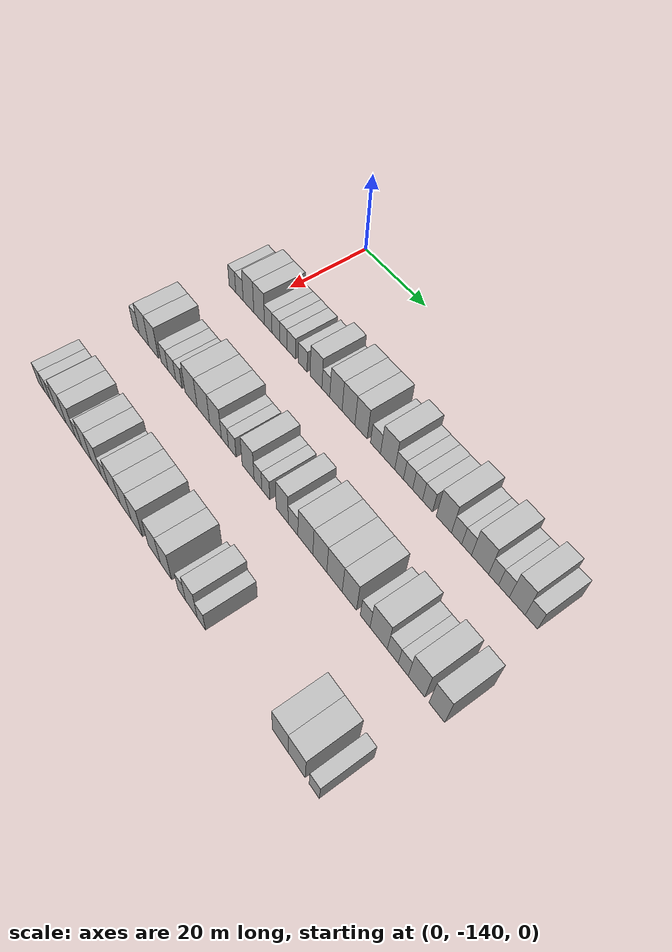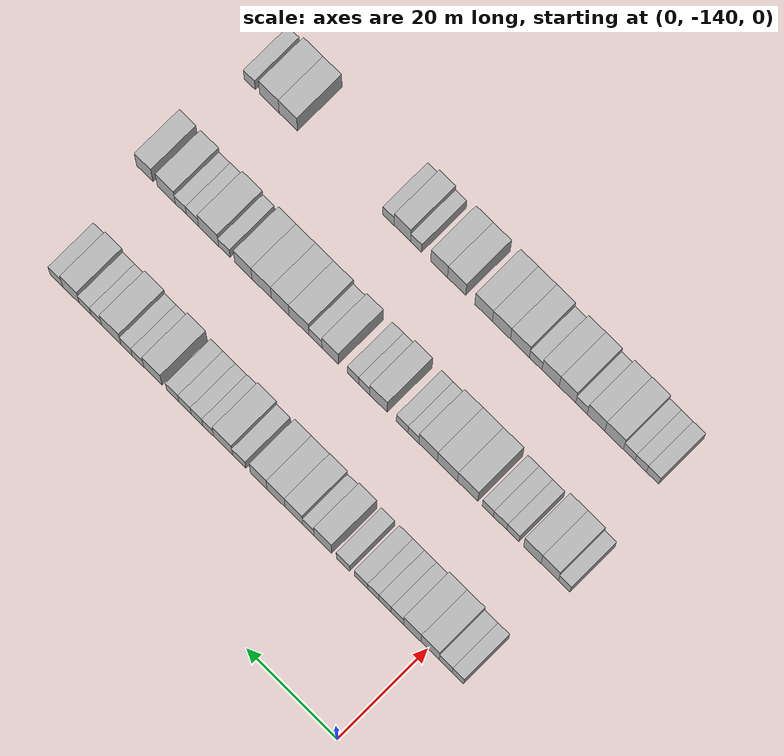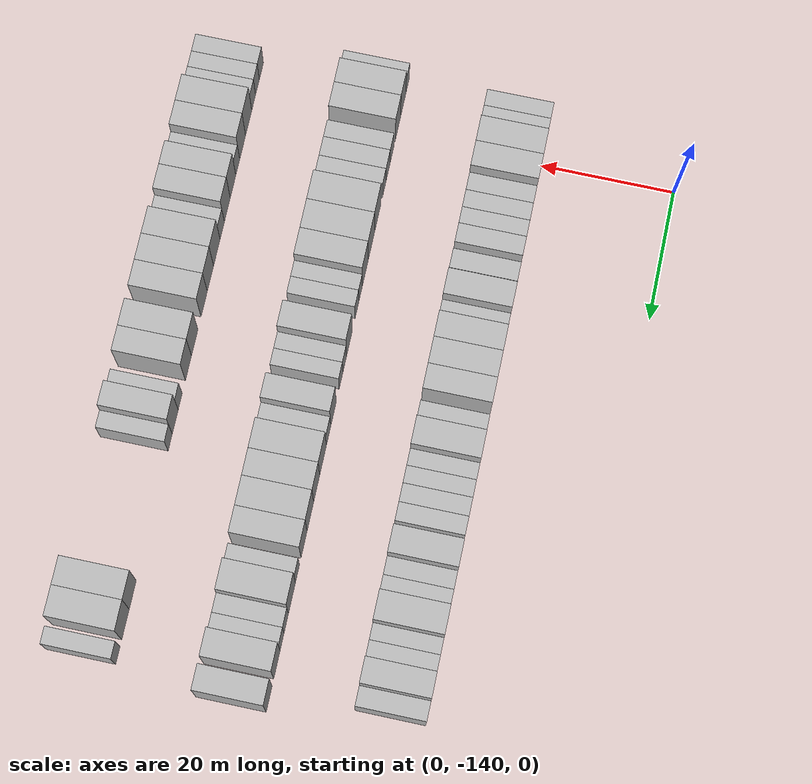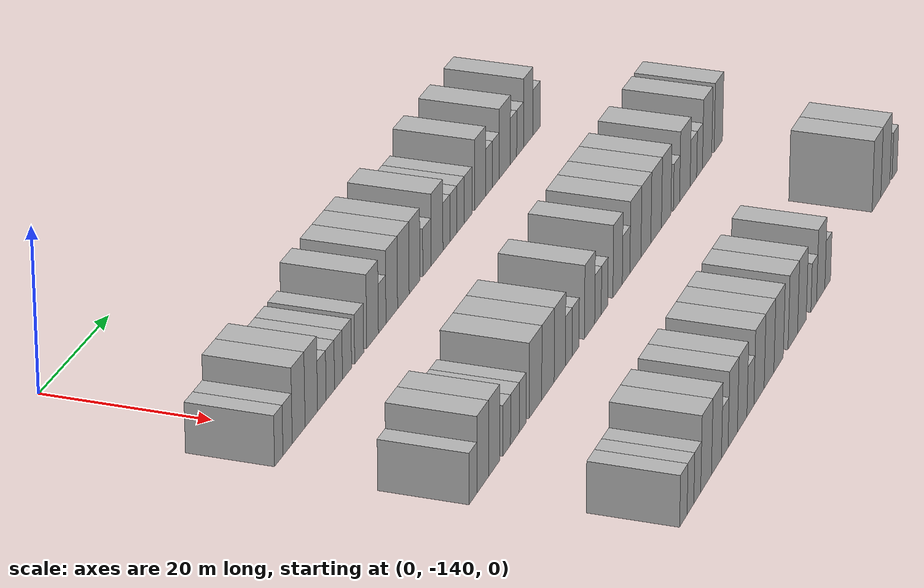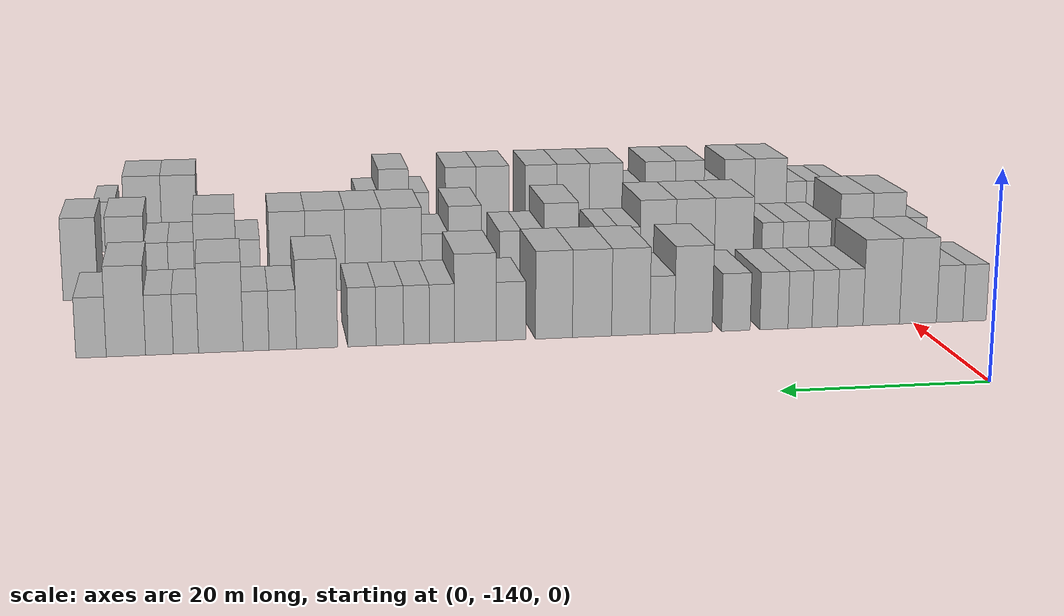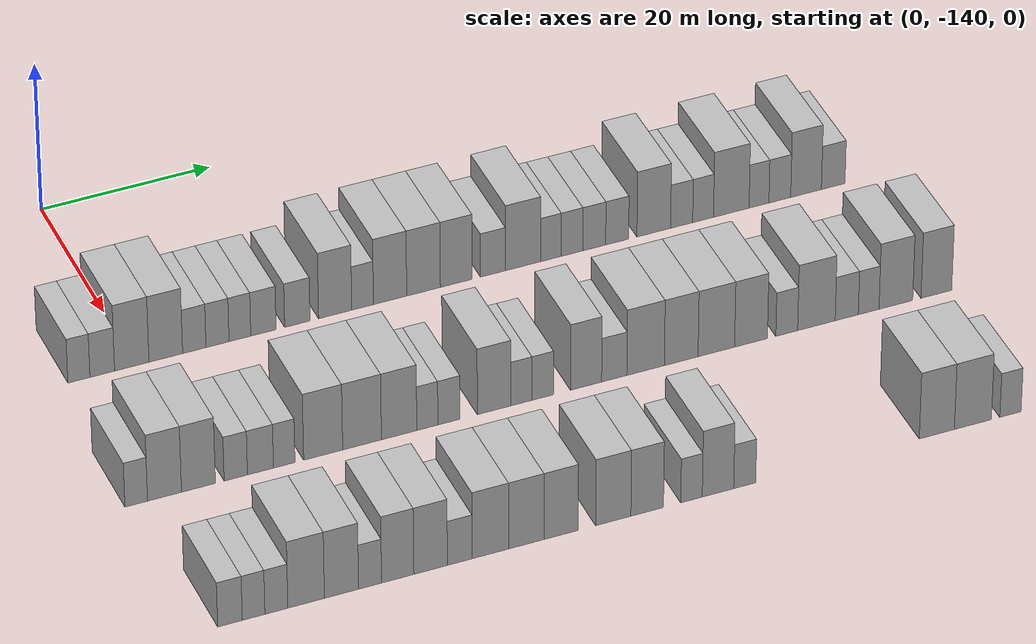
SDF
<sdf version="1.6">
 <world name="default">
  <model name="building_24">
   <static>1</static>
   <pose>25.0000 -146.5695 0 0.000000 0.000000 0.000000</pose>
   <link name="link">
    <pose>0 0 3.00 0 0 0</pose>
    <collision name="collision"><geometry><box><size>10.0000 2.5416 6.0000</size></box></geometry></collision>
    <visual name="visual">
     <cast_shadows>0</cast_shadows>
     <geometry><box><size>10.0000 2.5416 6.0000</size></box></geometry>
     <material>
      <script>
       <uri>model://HANNAS_wall/materials/scripts</uri>
       <uri>model://HANNAS_wall/materials/textures</uri>
       <name>vrc/HANNAS_wall</name>
      </script>
     </material>
    </visual>
   </link>
  </model>
  <model name="building_25">
   <static>1</static>
   <pose>25.0000 -143.8819 0 0.000000 0.000000 0.000000</pose>
   <link name="link">
    <pose>0 0 3.00 0 0 0</pose>
    <collision name="collision"><geometry><box><size>10.0000 2.8336 6.0000</size></box></geometry></collision>
    <visual name="visual">
     <cast_shadows>0</cast_shadows>
     <geometry><box><size>10.0000 2.8336 6.0000</size></box></geometry>
     <material>
      <script>
       <uri>model://HANNAS_wall/materials/scripts</uri>
       <uri>model://HANNAS_wall/materials/textures</uri>
       <name>vrc/HANNAS_wall</name>
      </script>
     </material>
    </visual>
   </link>
  </model>
  <model name="building_26">
   <static>1</static>
   <pose>25.0000 -140.4807 0 0.000000 0.000000 0.000000</pose>
   <link name="link">
    <pose>0 0 4.50 0 0 0</pose>
    <collision name="collision"><geometry><box><size>10.0000 3.9688 9.0000</size></box></geometry></collision>
    <visual name="visual">
     <cast_shadows>0</cast_shadows>
     <geometry><box><size>10.0000 3.9688 9.0000</size></box></geometry>
     <material>
      <script>
       <uri>model://HANNAS_wall/materials/scripts</uri>
       <uri>model://HANNAS_wall/materials/textures</uri>
       <name>vrc/HANNAS_wall</name>
      </script>
     </material>
    </visual>
   </link>
  </model>
  <model name="building_27">
   <static>1</static>
   <pose>25.0000 -136.5511 0 0.000000 0.000000 0.000000</pose>
   <link name="link">
    <pose>0 0 4.50 0 0 0</pose>
    <collision name="collision"><geometry><box><size>10.0000 3.8904 9.0000</size></box></geometry></collision>
    <visual name="visual">
     <cast_shadows>0</cast_shadows>
     <geometry><box><size>10.0000 3.8904 9.0000</size></box></geometry>
     <material>
      <script>
       <uri>model://HANNAS_wall/materials/scripts</uri>
       <uri>model://HANNAS_wall/materials/textures</uri>
       <name>vrc/HANNAS_wall</name>
      </script>
     </material>
    </visual>
   </link>
  </model>
  <model name="building_28">
   <static>1</static>
   <pose>25.0000 -133.2498 0 0.000000 0.000000 0.000000</pose>
   <link name="link">
    <pose>0 0 3.00 0 0 0</pose>
    <collision name="collision"><geometry><box><size>10.0000 2.7122 6.0000</size></box></geometry></collision>
    <visual name="visual">
     <cast_shadows>0</cast_shadows>
     <geometry><box><size>10.0000 2.7122 6.0000</size></box></geometry>
     <material>
      <script>
       <uri>model://HANNAS_wall/materials/scripts</uri>
       <uri>model://HANNAS_wall/materials/textures</uri>
       <name>vrc/HANNAS_wall</name>
      </script>
     </material>
    </visual>
   </link>
  </model>
  <model name="building_29">
   <static>1</static>
   <pose>25.0000 -130.5531 0 0.000000 0.000000 0.000000</pose>
   <link name="link">
    <pose>0 0 3.00 0 0 0</pose>
    <collision name="collision"><geometry><box><size>10.0000 2.6812 6.0000</size></box></geometry></collision>
    <visual name="visual">
     <cast_shadows>0</cast_shadows>
     <geometry><box><size>10.0000 2.6812 6.0000</size></box></geometry>
     <material>
      <script>
       <uri>model://HANNAS_wall/materials/scripts</uri>
       <uri>model://HANNAS_wall/materials/textures</uri>
       <name>vrc/HANNAS_wall</name>
      </script>
     </material>
    </visual>
   </link>
  </model>
  <model name="building_30">
   <static>1</static>
   <pose>25.0000 -127.9489 0 0.000000 0.000000 0.000000</pose>
   <link name="link">
    <pose>0 0 3.00 0 0 0</pose>
    <collision name="collision"><geometry><box><size>10.0000 2.5270 6.0000</size></box></geometry></collision>
    <visual name="visual">
     <cast_shadows>0</cast_shadows>
     <geometry><box><size>10.0000 2.5270 6.0000</size></box></geometry>
     <material>
      <script>
       <uri>model://HANNAS_wall/materials/scripts</uri>
       <uri>model://HANNAS_wall/materials/textures</uri>
       <name>vrc/HANNAS_wall</name>
      </script>
     </material>
    </visual>
   </link>
  </model>
  <model name="building_31">
   <static>1</static>
   <pose>25.0000 -125.2089 0 0.000000 0.000000 0.000000</pose>
   <link name="link">
    <pose>0 0 3.00 0 0 0</pose>
    <collision name="collision"><geometry><box><size>10.0000 2.9530 6.0000</size></box></geometry></collision>
    <visual name="visual">
     <cast_shadows>0</cast_shadows>
     <geometry><box><size>10.0000 2.9530 6.0000</size></box></geometry>
     <material>
      <script>
       <uri>model://HANNAS_wall/materials/scripts</uri>
       <uri>model://HANNAS_wall/materials/textures</uri>
       <name>vrc/HANNAS_wall</name>
      </script>
     </material>
    </visual>
   </link>
  </model>
  <model name="building_32">
   <static>1</static>
   <pose>25.0000 -121.2491 0 0.000000 0.000000 0.000000</pose>
   <link name="link">
    <pose>0 0 3.00 0 0 0</pose>
    <collision name="collision"><geometry><box><size>10.0000 2.9667 6.0000</size></box></geometry></collision>
    <visual name="visual">
     <cast_shadows>0</cast_shadows>
     <geometry><box><size>10.0000 2.9667 6.0000</size></box></geometry>
     <material>
      <script>
       <uri>model://HANNAS_wall/materials/scripts</uri>
       <uri>model://HANNAS_wall/materials/textures</uri>
       <name>vrc/HANNAS_wall</name>
      </script>
     </material>
    </visual>
   </link>
  </model>
  <model name="building_33">
   <static>1</static>
   <pose>25.0000 -116.8174 0 0.000000 0.000000 0.000000</pose>
   <link name="link">
    <pose>0 0 4.50 0 0 0</pose>
    <collision name="collision"><geometry><box><size>10.0000 3.8967 9.0000</size></box></geometry></collision>
    <visual name="visual">
     <cast_shadows>0</cast_shadows>
     <geometry><box><size>10.0000 3.8967 9.0000</size></box></geometry>
     <material>
      <script>
       <uri>model://HANNAS_wall/materials/scripts</uri>
       <uri>model://HANNAS_wall/materials/textures</uri>
       <name>vrc/HANNAS_wall</name>
      </script>
     </material>
    </visual>
   </link>
  </model>
  <model name="building_34">
   <static>1</static>
   <pose>25.0000 -113.5964 0 0.000000 0.000000 0.000000</pose>
   <link name="link">
    <pose>0 0 3.00 0 0 0</pose>
    <collision name="collision"><geometry><box><size>10.0000 2.5452 6.0000</size></box></geometry></collision>
    <visual name="visual">
     <cast_shadows>0</cast_shadows>
     <geometry><box><size>10.0000 2.5452 6.0000</size></box></geometry>
     <material>
      <script>
       <uri>model://HANNAS_wall/materials/scripts</uri>
       <uri>model://HANNAS_wall/materials/textures</uri>
       <name>vrc/HANNAS_wall</name>
      </script>
     </material>
    </visual>
   </link>
  </model>
  <model name="building_35">
   <static>1</static>
   <pose>25.0000 -110.3677 0 0.000000 0.000000 0.000000</pose>
   <link name="link">
    <pose>0 0 4.50 0 0 0</pose>
    <collision name="collision"><geometry><box><size>10.0000 3.9122 9.0000</size></box></geometry></collision>
    <visual name="visual">
     <cast_shadows>0</cast_shadows>
     <geometry><box><size>10.0000 3.9122 9.0000</size></box></geometry>
     <material>
      <script>
       <uri>model://HANNAS_wall/materials/scripts</uri>
       <uri>model://HANNAS_wall/materials/textures</uri>
       <name>vrc/HANNAS_wall</name>
      </script>
     </material>
    </visual>
   </link>
  </model>
  <model name="building_36">
   <static>1</static>
   <pose>25.0000 -106.4191 0 0.000000 0.000000 0.000000</pose>
   <link name="link">
    <pose>0 0 4.50 0 0 0</pose>
    <collision name="collision"><geometry><box><size>10.0000 3.9849 9.0000</size></box></geometry></collision>
    <visual name="visual">
     <cast_shadows>0</cast_shadows>
     <geometry><box><size>10.0000 3.9849 9.0000</size></box></geometry>
     <material>
      <script>
       <uri>model://HANNAS_wall/materials/scripts</uri>
       <uri>model://HANNAS_wall/materials/textures</uri>
       <name>vrc/HANNAS_wall</name>
      </script>
     </material>
    </visual>
   </link>
  </model>
  <model name="building_37">
   <static>1</static>
   <pose>25.0000 -102.5497 0 0.000000 0.000000 0.000000</pose>
   <link name="link">
    <pose>0 0 4.50 0 0 0</pose>
    <collision name="collision"><geometry><box><size>10.0000 3.7540 9.0000</size></box></geometry></collision>
    <visual name="visual">
     <cast_shadows>0</cast_shadows>
     <geometry><box><size>10.0000 3.7540 9.0000</size></box></geometry>
     <material>
      <script>
       <uri>model://HANNAS_wall/materials/scripts</uri>
       <uri>model://HANNAS_wall/materials/textures</uri>
       <name>vrc/HANNAS_wall</name>
      </script>
     </material>
    </visual>
   </link>
  </model>
  <model name="building_38">
   <static>1</static>
   <pose>25.0000 -98.1888 0 0.000000 0.000000 0.000000</pose>
   <link name="link">
    <pose>0 0 3.00 0 0 0</pose>
    <collision name="collision"><geometry><box><size>10.0000 2.9676 6.0000</size></box></geometry></collision>
    <visual name="visual">
     <cast_shadows>0</cast_shadows>
     <geometry><box><size>10.0000 2.9676 6.0000</size></box></geometry>
     <material>
      <script>
       <uri>model://HANNAS_wall/materials/scripts</uri>
       <uri>model://HANNAS_wall/materials/textures</uri>
       <name>vrc/HANNAS_wall</name>
      </script>
     </material>
    </visual>
   </link>
  </model>
  <model name="building_39">
   <static>1</static>
   <pose>25.0000 -94.6192 0 0.000000 0.000000 0.000000</pose>
   <link name="link">
    <pose>0 0 4.50 0 0 0</pose>
    <collision name="collision"><geometry><box><size>10.0000 4.1716 9.0000</size></box></geometry></collision>
    <visual name="visual">
     <cast_shadows>0</cast_shadows>
     <geometry><box><size>10.0000 4.1716 9.0000</size></box></geometry>
     <material>
      <script>
       <uri>model://HANNAS_wall/materials/scripts</uri>
       <uri>model://HANNAS_wall/materials/textures</uri>
       <name>vrc/HANNAS_wall</name>
      </script>
     </material>
    </visual>
   </link>
  </model>
  <model name="building_40">
   <static>1</static>
   <pose>25.0000 -91.2941 0 0.000000 0.000000 0.000000</pose>
   <link name="link">
    <pose>0 0 3.00 0 0 0</pose>
    <collision name="collision"><geometry><box><size>10.0000 2.4787 6.0000</size></box></geometry></collision>
    <visual name="visual">
     <cast_shadows>0</cast_shadows>
     <geometry><box><size>10.0000 2.4787 6.0000</size></box></geometry>
     <material>
      <script>
       <uri>model://HANNAS_wall/materials/scripts</uri>
       <uri>model://HANNAS_wall/materials/textures</uri>
       <name>vrc/HANNAS_wall</name>
      </script>
     </material>
    </visual>
   </link>
  </model>
  <model name="building_41">
   <static>1</static>
   <pose>25.0000 -88.7697 0 0.000000 0.000000 0.000000</pose>
   <link name="link">
    <pose>0 0 3.00 0 0 0</pose>
    <collision name="collision"><geometry><box><size>10.0000 2.5702 6.0000</size></box></geometry></collision>
    <visual name="visual">
     <cast_shadows>0</cast_shadows>
     <geometry><box><size>10.0000 2.5702 6.0000</size></box></geometry>
     <material>
      <script>
       <uri>model://HANNAS_wall/materials/scripts</uri>
       <uri>model://HANNAS_wall/materials/textures</uri>
       <name>vrc/HANNAS_wall</name>
      </script>
     </material>
    </visual>
   </link>
  </model>
  <model name="building_42">
   <static>1</static>
   <pose>25.0000 -86.1177 0 0.000000 0.000000 0.000000</pose>
   <link name="link">
    <pose>0 0 3.00 0 0 0</pose>
    <collision name="collision"><geometry><box><size>10.0000 2.7337 6.0000</size></box></geometry></collision>
    <visual name="visual">
     <cast_shadows>0</cast_shadows>
     <geometry><box><size>10.0000 2.7337 6.0000</size></box></geometry>
     <material>
      <script>
       <uri>model://HANNAS_wall/materials/scripts</uri>
       <uri>model://HANNAS_wall/materials/textures</uri>
       <name>vrc/HANNAS_wall</name>
      </script>
     </material>
    </visual>
   </link>
  </model>
  <model name="building_43">
   <static>1</static>
   <pose>25.0000 -83.3711 0 0.000000 0.000000 0.000000</pose>
   <link name="link">
    <pose>0 0 3.00 0 0 0</pose>
    <collision name="collision"><geometry><box><size>10.0000 2.7595 6.0000</size></box></geometry></collision>
    <visual name="visual">
     <cast_shadows>0</cast_shadows>
     <geometry><box><size>10.0000 2.7595 6.0000</size></box></geometry>
     <material>
      <script>
       <uri>model://HANNAS_wall/materials/scripts</uri>
       <uri>model://HANNAS_wall/materials/textures</uri>
       <name>vrc/HANNAS_wall</name>
      </script>
     </material>
    </visual>
   </link>
  </model>
  <model name="building_44">
   <static>1</static>
   <pose>25.0000 -78.9670 0 0.000000 0.000000 0.000000</pose>
   <link name="link">
    <pose>0 0 4.50 0 0 0</pose>
    <collision name="collision"><geometry><box><size>10.0000 4.0487 9.0000</size></box></geometry></collision>
    <visual name="visual">
     <cast_shadows>0</cast_shadows>
     <geometry><box><size>10.0000 4.0487 9.0000</size></box></geometry>
     <material>
      <script>
       <uri>model://HANNAS_wall/materials/scripts</uri>
       <uri>model://HANNAS_wall/materials/textures</uri>
       <name>vrc/HANNAS_wall</name>
      </script>
     </material>
    </visual>
   </link>
  </model>
  <model name="building_45">
   <static>1</static>
   <pose>25.0000 -75.6088 0 0.000000 0.000000 0.000000</pose>
   <link name="link">
    <pose>0 0 3.00 0 0 0</pose>
    <collision name="collision"><geometry><box><size>10.0000 2.6677 6.0000</size></box></geometry></collision>
    <visual name="visual">
     <cast_shadows>0</cast_shadows>
     <geometry><box><size>10.0000 2.6677 6.0000</size></box></geometry>
     <material>
      <script>
       <uri>model://HANNAS_wall/materials/scripts</uri>
       <uri>model://HANNAS_wall/materials/textures</uri>
       <name>vrc/HANNAS_wall</name>
      </script>
     </material>
    </visual>
   </link>
  </model>
  <model name="building_46">
   <static>1</static>
   <pose>25.0000 -73.0191 0 0.000000 0.000000 0.000000</pose>
   <link name="link">
    <pose>0 0 3.00 0 0 0</pose>
    <collision name="collision"><geometry><box><size>10.0000 2.5119 6.0000</size></box></geometry></collision>
    <visual name="visual">
     <cast_shadows>0</cast_shadows>
     <geometry><box><size>10.0000 2.5119 6.0000</size></box></geometry>
     <material>
      <script>
       <uri>model://HANNAS_wall/materials/scripts</uri>
       <uri>model://HANNAS_wall/materials/textures</uri>
       <name>vrc/HANNAS_wall</name>
      </script>
     </material>
    </visual>
   </link>
  </model>
  <model name="building_47">
   <static>1</static>
   <pose>25.0000 -69.6125 0 0.000000 0.000000 0.000000</pose>
   <link name="link">
    <pose>0 0 4.50 0 0 0</pose>
    <collision name="collision"><geometry><box><size>10.0000 4.3013 9.0000</size></box></geometry></collision>
    <visual name="visual">
     <cast_shadows>0</cast_shadows>
     <geometry><box><size>10.0000 4.3013 9.0000</size></box></geometry>
     <material>
      <script>
       <uri>model://HANNAS_wall/materials/scripts</uri>
       <uri>model://HANNAS_wall/materials/textures</uri>
       <name>vrc/HANNAS_wall</name>
      </script>
     </material>
    </visual>
   </link>
  </model>
  <model name="building_48">
   <static>1</static>
   <pose>25.0000 -66.2549 0 0.000000 0.000000 0.000000</pose>
   <link name="link">
    <pose>0 0 3.00 0 0 0</pose>
    <collision name="collision"><geometry><box><size>10.0000 2.4138 6.0000</size></box></geometry></collision>
    <visual name="visual">
     <cast_shadows>0</cast_shadows>
     <geometry><box><size>10.0000 2.4138 6.0000</size></box></geometry>
     <material>
      <script>
       <uri>model://HANNAS_wall/materials/scripts</uri>
       <uri>model://HANNAS_wall/materials/textures</uri>
       <name>vrc/HANNAS_wall</name>
      </script>
     </material>
    </visual>
   </link>
  </model>
  <model name="building_49">
   <static>1</static>
   <pose>25.0000 -63.7254 0 0.000000 0.000000 0.000000</pose>
   <link name="link">
    <pose>0 0 3.00 0 0 0</pose>
    <collision name="collision"><geometry><box><size>10.0000 2.6452 6.0000</size></box></geometry></collision>
    <visual name="visual">
     <cast_shadows>0</cast_shadows>
     <geometry><box><size>10.0000 2.6452 6.0000</size></box></geometry>
     <material>
      <script>
       <uri>model://HANNAS_wall/materials/scripts</uri>
       <uri>model://HANNAS_wall/materials/textures</uri>
       <name>vrc/HANNAS_wall</name>
      </script>
     </material>
    </visual>
   </link>
  </model>
  <model name="building_50">
   <static>1</static>
   <pose>25.0000 -60.5292 0 0.000000 0.000000 0.000000</pose>
   <link name="link">
    <pose>0 0 4.50 0 0 0</pose>
    <collision name="collision"><geometry><box><size>10.0000 3.7474 9.0000</size></box></geometry></collision>
    <visual name="visual">
     <cast_shadows>0</cast_shadows>
     <geometry><box><size>10.0000 3.7474 9.0000</size></box></geometry>
     <material>
      <script>
       <uri>model://HANNAS_wall/materials/scripts</uri>
       <uri>model://HANNAS_wall/materials/textures</uri>
       <name>vrc/HANNAS_wall</name>
      </script>
     </material>
    </visual>
   </link>
  </model>
  <model name="building_51">
   <static>1</static>
   <pose>25.0000 -57.2158 0 0.000000 0.000000 0.000000</pose>
   <link name="link">
    <pose>0 0 3.00 0 0 0</pose>
    <collision name="collision"><geometry><box><size>10.0000 2.8793 6.0000</size></box></geometry></collision>
    <visual name="visual">
     <cast_shadows>0</cast_shadows>
     <geometry><box><size>10.0000 2.8793 6.0000</size></box></geometry>
     <material>
      <script>
       <uri>model://HANNAS_wall/materials/scripts</uri>
       <uri>model://HANNAS_wall/materials/textures</uri>
       <name>vrc/HANNAS_wall</name>
      </script>
     </material>
    </visual>
   </link>
  </model>
  <model name="building_150">
   <static>1</static>
   <pose>47.0000 -148.1839 0 0.000000 0.000000 0.000000</pose>
   <link name="link">
    <pose>0 0 3.00 0 0 0</pose>
    <collision name="collision"><geometry><box><size>10.0000 2.5579 6.0000</size></box></geometry></collision>
    <visual name="visual">
     <cast_shadows>0</cast_shadows>
     <geometry><box><size>10.0000 2.5579 6.0000</size></box></geometry>
     <material>
      <script>
       <uri>model://HANNAS_wall/materials/scripts</uri>
       <uri>model://HANNAS_wall/materials/textures</uri>
       <name>vrc/HANNAS_wall</name>
      </script>
     </material>
    </visual>
   </link>
  </model>
  <model name="building_151">
   <static>1</static>
   <pose>47.0000 -144.9830 0 0.000000 0.000000 0.000000</pose>
   <link name="link">
    <pose>0 0 4.50 0 0 0</pose>
    <collision name="collision"><geometry><box><size>10.0000 3.8438 9.0000</size></box></geometry></collision>
    <visual name="visual">
     <cast_shadows>0</cast_shadows>
     <geometry><box><size>10.0000 3.8438 9.0000</size></box></geometry>
     <material>
      <script>
       <uri>model://HANNAS_wall/materials/scripts</uri>
       <uri>model://HANNAS_wall/materials/textures</uri>
       <name>vrc/HANNAS_wall</name>
      </script>
     </material>
    </visual>
   </link>
  </model>
  <model name="building_152">
   <static>1</static>
   <pose>47.0000 -141.1372 0 0.000000 0.000000 0.000000</pose>
   <link name="link">
    <pose>0 0 4.50 0 0 0</pose>
    <collision name="collision"><geometry><box><size>10.0000 3.8479 9.0000</size></box></geometry></collision>
    <visual name="visual">
     <cast_shadows>0</cast_shadows>
     <geometry><box><size>10.0000 3.8479 9.0000</size></box></geometry>
     <material>
      <script>
       <uri>model://HANNAS_wall/materials/scripts</uri>
       <uri>model://HANNAS_wall/materials/textures</uri>
       <name>vrc/HANNAS_wall</name>
      </script>
     </material>
    </visual>
   </link>
  </model>
  <model name="building_153">
   <static>1</static>
   <pose>47.0000 -136.8875 0 0.000000 0.000000 0.000000</pose>
   <link name="link">
    <pose>0 0 3.00 0 0 0</pose>
    <collision name="collision"><geometry><box><size>10.0000 2.6517 6.0000</size></box></geometry></collision>
    <visual name="visual">
     <cast_shadows>0</cast_shadows>
     <geometry><box><size>10.0000 2.6517 6.0000</size></box></geometry>
     <material>
      <script>
       <uri>model://HANNAS_wall/materials/scripts</uri>
       <uri>model://HANNAS_wall/materials/textures</uri>
       <name>vrc/HANNAS_wall</name>
      </script>
     </material>
    </visual>
   </link>
  </model>
  <model name="building_154">
   <static>1</static>
   <pose>47.0000 -134.0745 0 0.000000 0.000000 0.000000</pose>
   <link name="link">
    <pose>0 0 3.00 0 0 0</pose>
    <collision name="collision"><geometry><box><size>10.0000 2.9743 6.0000</size></box></geometry></collision>
    <visual name="visual">
     <cast_shadows>0</cast_shadows>
     <geometry><box><size>10.0000 2.9743 6.0000</size></box></geometry>
     <material>
      <script>
       <uri>model://HANNAS_wall/materials/scripts</uri>
       <uri>model://HANNAS_wall/materials/textures</uri>
       <name>vrc/HANNAS_wall</name>
      </script>
     </material>
    </visual>
   </link>
  </model>
  <model name="building_155">
   <static>1</static>
   <pose>47.0000 -131.3615 0 0.000000 0.000000 0.000000</pose>
   <link name="link">
    <pose>0 0 3.00 0 0 0</pose>
    <collision name="collision"><geometry><box><size>10.0000 2.4516 6.0000</size></box></geometry></collision>
    <visual name="visual">
     <cast_shadows>0</cast_shadows>
     <geometry><box><size>10.0000 2.4516 6.0000</size></box></geometry>
     <material>
      <script>
       <uri>model://HANNAS_wall/materials/scripts</uri>
       <uri>model://HANNAS_wall/materials/textures</uri>
       <name>vrc/HANNAS_wall</name>
      </script>
     </material>
    </visual>
   </link>
  </model>
  <model name="building_156">
   <static>1</static>
   <pose>47.0000 -126.8989 0 0.000000 0.000000 0.000000</pose>
   <link name="link">
    <pose>0 0 4.50 0 0 0</pose>
    <collision name="collision"><geometry><box><size>10.0000 4.4736 9.0000</size></box></geometry></collision>
    <visual name="visual">
     <cast_shadows>0</cast_shadows>
     <geometry><box><size>10.0000 4.4736 9.0000</size></box></geometry>
     <material>
      <script>
       <uri>model://HANNAS_wall/materials/scripts</uri>
       <uri>model://HANNAS_wall/materials/textures</uri>
       <name>vrc/HANNAS_wall</name>
      </script>
     </material>
    </visual>
   </link>
  </model>
  <model name="building_157">
   <static>1</static>
   <pose>47.0000 -122.4296 0 0.000000 0.000000 0.000000</pose>
   <link name="link">
    <pose>0 0 4.50 0 0 0</pose>
    <collision name="collision"><geometry><box><size>10.0000 4.4650 9.0000</size></box></geometry></collision>
    <visual name="visual">
     <cast_shadows>0</cast_shadows>
     <geometry><box><size>10.0000 4.4650 9.0000</size></box></geometry>
     <material>
      <script>
       <uri>model://HANNAS_wall/materials/scripts</uri>
       <uri>model://HANNAS_wall/materials/textures</uri>
       <name>vrc/HANNAS_wall</name>
      </script>
     </material>
    </visual>
   </link>
  </model>
  <model name="building_158">
   <static>1</static>
   <pose>47.0000 -118.1539 0 0.000000 0.000000 0.000000</pose>
   <link name="link">
    <pose>0 0 4.50 0 0 0</pose>
    <collision name="collision"><geometry><box><size>10.0000 4.0863 9.0000</size></box></geometry></collision>
    <visual name="visual">
     <cast_shadows>0</cast_shadows>
     <geometry><box><size>10.0000 4.0863 9.0000</size></box></geometry>
     <material>
      <script>
       <uri>model://HANNAS_wall/materials/scripts</uri>
       <uri>model://HANNAS_wall/materials/textures</uri>
       <name>vrc/HANNAS_wall</name>
      </script>
     </material>
    </visual>
   </link>
  </model>
  <model name="building_159">
   <static>1</static>
   <pose>47.0000 -114.8946 0 0.000000 0.000000 0.000000</pose>
   <link name="link">
    <pose>0 0 3.00 0 0 0</pose>
    <collision name="collision"><geometry><box><size>10.0000 2.4323 6.0000</size></box></geometry></collision>
    <visual name="visual">
     <cast_shadows>0</cast_shadows>
     <geometry><box><size>10.0000 2.4323 6.0000</size></box></geometry>
     <material>
      <script>
       <uri>model://HANNAS_wall/materials/scripts</uri>
       <uri>model://HANNAS_wall/materials/textures</uri>
       <name>vrc/HANNAS_wall</name>
      </script>
     </material>
    </visual>
   </link>
  </model>
  <model name="building_160">
   <static>1</static>
   <pose>47.0000 -112.3926 0 0.000000 0.000000 0.000000</pose>
   <link name="link">
    <pose>0 0 3.00 0 0 0</pose>
    <collision name="collision"><geometry><box><size>10.0000 2.5717 6.0000</size></box></geometry></collision>
    <visual name="visual">
     <cast_shadows>0</cast_shadows>
     <geometry><box><size>10.0000 2.5717 6.0000</size></box></geometry>
     <material>
      <script>
       <uri>model://HANNAS_wall/materials/scripts</uri>
       <uri>model://HANNAS_wall/materials/textures</uri>
       <name>vrc/HANNAS_wall</name>
      </script>
     </material>
    </visual>
   </link>
  </model>
  <model name="building_161">
   <static>1</static>
   <pose>47.0000 -107.1591 0 0.000000 0.000000 0.000000</pose>
   <link name="link">
    <pose>0 0 4.50 0 0 0</pose>
    <collision name="collision"><geometry><box><size>10.0000 3.8954 9.0000</size></box></geometry></collision>
    <visual name="visual">
     <cast_shadows>0</cast_shadows>
     <geometry><box><size>10.0000 3.8954 9.0000</size></box></geometry>
     <material>
      <script>
       <uri>model://HANNAS_wall/materials/scripts</uri>
       <uri>model://HANNAS_wall/materials/textures</uri>
       <name>vrc/HANNAS_wall</name>
      </script>
     </material>
    </visual>
   </link>
  </model>
  <model name="building_162">
   <static>1</static>
   <pose>47.0000 -103.9714 0 0.000000 0.000000 0.000000</pose>
   <link name="link">
    <pose>0 0 3.00 0 0 0</pose>
    <collision name="collision"><geometry><box><size>10.0000 2.4798 6.0000</size></box></geometry></collision>
    <visual name="visual">
     <cast_shadows>0</cast_shadows>
     <geometry><box><size>10.0000 2.4798 6.0000</size></box></geometry>
     <material>
      <script>
       <uri>model://HANNAS_wall/materials/scripts</uri>
       <uri>model://HANNAS_wall/materials/textures</uri>
       <name>vrc/HANNAS_wall</name>
      </script>
     </material>
    </visual>
   </link>
  </model>
  <model name="building_163">
   <static>1</static>
   <pose>47.0000 -101.4872 0 0.000000 0.000000 0.000000</pose>
   <link name="link">
    <pose>0 0 3.00 0 0 0</pose>
    <collision name="collision"><geometry><box><size>10.0000 2.4887 6.0000</size></box></geometry></collision>
    <visual name="visual">
     <cast_shadows>0</cast_shadows>
     <geometry><box><size>10.0000 2.4887 6.0000</size></box></geometry>
     <material>
      <script>
       <uri>model://HANNAS_wall/materials/scripts</uri>
       <uri>model://HANNAS_wall/materials/textures</uri>
       <name>vrc/HANNAS_wall</name>
      </script>
     </material>
    </visual>
   </link>
  </model>
  <model name="building_164">
   <static>1</static>
   <pose>47.0000 -96.4196 0 0.000000 0.000000 0.000000</pose>
   <link name="link">
    <pose>0 0 4.50 0 0 0</pose>
    <collision name="collision"><geometry><box><size>10.0000 3.6465 9.0000</size></box></geometry></collision>
    <visual name="visual">
     <cast_shadows>0</cast_shadows>
     <geometry><box><size>10.0000 3.6465 9.0000</size></box></geometry>
     <material>
      <script>
       <uri>model://HANNAS_wall/materials/scripts</uri>
       <uri>model://HANNAS_wall/materials/textures</uri>
       <name>vrc/HANNAS_wall</name>
      </script>
     </material>
    </visual>
   </link>
  </model>
  <model name="building_165">
   <static>1</static>
   <pose>47.0000 -93.1145 0 0.000000 0.000000 0.000000</pose>
   <link name="link">
    <pose>0 0 3.00 0 0 0</pose>
    <collision name="collision"><geometry><box><size>10.0000 2.9637 6.0000</size></box></geometry></collision>
    <visual name="visual">
     <cast_shadows>0</cast_shadows>
     <geometry><box><size>10.0000 2.9637 6.0000</size></box></geometry>
     <material>
      <script>
       <uri>model://HANNAS_wall/materials/scripts</uri>
       <uri>model://HANNAS_wall/materials/textures</uri>
       <name>vrc/HANNAS_wall</name>
      </script>
     </material>
    </visual>
   </link>
  </model>
  <model name="building_166">
   <static>1</static>
   <pose>47.0000 -89.4271 0 0.000000 0.000000 0.000000</pose>
   <link name="link">
    <pose>0 0 4.50 0 0 0</pose>
    <collision name="collision"><geometry><box><size>10.0000 4.4111 9.0000</size></box></geometry></collision>
    <visual name="visual">
     <cast_shadows>0</cast_shadows>
     <geometry><box><size>10.0000 4.4111 9.0000</size></box></geometry>
     <material>
      <script>
       <uri>model://HANNAS_wall/materials/scripts</uri>
       <uri>model://HANNAS_wall/materials/textures</uri>
       <name>vrc/HANNAS_wall</name>
      </script>
     </material>
    </visual>
   </link>
  </model>
  <model name="building_167">
   <static>1</static>
   <pose>47.0000 -85.2304 0 0.000000 0.000000 0.000000</pose>
   <link name="link">
    <pose>0 0 4.50 0 0 0</pose>
    <collision name="collision"><geometry><box><size>10.0000 3.9824 9.0000</size></box></geometry></collision>
    <visual name="visual">
     <cast_shadows>0</cast_shadows>
     <geometry><box><size>10.0000 3.9824 9.0000</size></box></geometry>
     <material>
      <script>
       <uri>model://HANNAS_wall/materials/scripts</uri>
       <uri>model://HANNAS_wall/materials/textures</uri>
       <name>vrc/HANNAS_wall</name>
      </script>
     </material>
    </visual>
   </link>
  </model>
  <model name="building_168">
   <static>1</static>
   <pose>47.0000 -81.0783 0 0.000000 0.000000 0.000000</pose>
   <link name="link">
    <pose>0 0 4.50 0 0 0</pose>
    <collision name="collision"><geometry><box><size>10.0000 4.3218 9.0000</size></box></geometry></collision>
    <visual name="visual">
     <cast_shadows>0</cast_shadows>
     <geometry><box><size>10.0000 4.3218 9.0000</size></box></geometry>
     <material>
      <script>
       <uri>model://HANNAS_wall/materials/scripts</uri>
       <uri>model://HANNAS_wall/materials/textures</uri>
       <name>vrc/HANNAS_wall</name>
      </script>
     </material>
    </visual>
   </link>
  </model>
  <model name="building_169">
   <static>1</static>
   <pose>47.0000 -76.9669 0 0.000000 0.000000 0.000000</pose>
   <link name="link">
    <pose>0 0 4.50 0 0 0</pose>
    <collision name="collision"><geometry><box><size>10.0000 3.9010 9.0000</size></box></geometry></collision>
    <visual name="visual">
     <cast_shadows>0</cast_shadows>
     <geometry><box><size>10.0000 3.9010 9.0000</size></box></geometry>
     <material>
      <script>
       <uri>model://HANNAS_wall/materials/scripts</uri>
       <uri>model://HANNAS_wall/materials/textures</uri>
       <name>vrc/HANNAS_wall</name>
      </script>
     </material>
    </visual>
   </link>
  </model>
  <model name="building_170">
   <static>1</static>
   <pose>47.0000 -72.7188 0 0.000000 0.000000 0.000000</pose>
   <link name="link">
    <pose>0 0 3.00 0 0 0</pose>
    <collision name="collision"><geometry><box><size>10.0000 2.5952 6.0000</size></box></geometry></collision>
    <visual name="visual">
     <cast_shadows>0</cast_shadows>
     <geometry><box><size>10.0000 2.5952 6.0000</size></box></geometry>
     <material>
      <script>
       <uri>model://HANNAS_wall/materials/scripts</uri>
       <uri>model://HANNAS_wall/materials/textures</uri>
       <name>vrc/HANNAS_wall</name>
      </script>
     </material>
    </visual>
   </link>
  </model>
  <model name="building_171">
   <static>1</static>
   <pose>47.0000 -69.1838 0 0.000000 0.000000 0.000000</pose>
   <link name="link">
    <pose>0 0 4.50 0 0 0</pose>
    <collision name="collision"><geometry><box><size>10.0000 4.4747 9.0000</size></box></geometry></collision>
    <visual name="visual">
     <cast_shadows>0</cast_shadows>
     <geometry><box><size>10.0000 4.4747 9.0000</size></box></geometry>
     <material>
      <script>
       <uri>model://HANNAS_wall/materials/scripts</uri>
       <uri>model://HANNAS_wall/materials/textures</uri>
       <name>vrc/HANNAS_wall</name>
      </script>
     </material>
    </visual>
   </link>
  </model>
  <model name="building_172">
   <static>1</static>
   <pose>47.0000 -65.5592 0 0.000000 0.000000 0.000000</pose>
   <link name="link">
    <pose>0 0 3.00 0 0 0</pose>
    <collision name="collision"><geometry><box><size>10.0000 2.7746 6.0000</size></box></geometry></collision>
    <visual name="visual">
     <cast_shadows>0</cast_shadows>
     <geometry><box><size>10.0000 2.7746 6.0000</size></box></geometry>
     <material>
      <script>
       <uri>model://HANNAS_wall/materials/scripts</uri>
       <uri>model://HANNAS_wall/materials/textures</uri>
       <name>vrc/HANNAS_wall</name>
      </script>
     </material>
    </visual>
   </link>
  </model>
  <model name="building_173">
   <static>1</static>
   <pose>47.0000 -62.9297 0 0.000000 0.000000 0.000000</pose>
   <link name="link">
    <pose>0 0 3.00 0 0 0</pose>
    <collision name="collision"><geometry><box><size>10.0000 2.4844 6.0000</size></box></geometry></collision>
    <visual name="visual">
     <cast_shadows>0</cast_shadows>
     <geometry><box><size>10.0000 2.4844 6.0000</size></box></geometry>
     <material>
      <script>
       <uri>model://HANNAS_wall/materials/scripts</uri>
       <uri>model://HANNAS_wall/materials/textures</uri>
       <name>vrc/HANNAS_wall</name>
      </script>
     </material>
    </visual>
   </link>
  </model>
  <model name="building_174">
   <static>1</static>
   <pose>47.0000 -59.6638 0 0.000000 0.000000 0.000000</pose>
   <link name="link">
    <pose>0 0 4.50 0 0 0</pose>
    <collision name="collision"><geometry><box><size>10.0000 4.0475 9.0000</size></box></geometry></collision>
    <visual name="visual">
     <cast_shadows>0</cast_shadows>
     <geometry><box><size>10.0000 4.0475 9.0000</size></box></geometry>
     <material>
      <script>
       <uri>model://HANNAS_wall/materials/scripts</uri>
       <uri>model://HANNAS_wall/materials/textures</uri>
       <name>vrc/HANNAS_wall</name>
      </script>
     </material>
    </visual>
   </link>
  </model>
  <model name="building_175">
   <static>1</static>
   <pose>47.0000 -54.7906 0 0.000000 0.000000 0.000000</pose>
   <link name="link">
    <pose>0 0 4.50 0 0 0</pose>
    <collision name="collision"><geometry><box><size>10.0000 3.6987 9.0000</size></box></geometry></collision>
    <visual name="visual">
     <cast_shadows>0</cast_shadows>
     <geometry><box><size>10.0000 3.6987 9.0000</size></box></geometry>
     <material>
      <script>
       <uri>model://HANNAS_wall/materials/scripts</uri>
       <uri>model://HANNAS_wall/materials/textures</uri>
       <name>vrc/HANNAS_wall</name>
      </script>
     </material>
    </visual>
   </link>
  </model>
  <model name="building_270">
   <static>1</static>
   <pose>69.0000 -145.9915 0 0.000000 0.000000 0.000000</pose>
   <link name="link">
    <pose>0 0 3.00 0 0 0</pose>
    <collision name="collision"><geometry><box><size>10.0000 2.7452 6.0000</size></box></geometry></collision>
    <visual name="visual">
     <cast_shadows>0</cast_shadows>
     <geometry><box><size>10.0000 2.7452 6.0000</size></box></geometry>
     <material>
      <script>
       <uri>model://HANNAS_wall/materials/scripts</uri>
       <uri>model://HANNAS_wall/materials/textures</uri>
       <name>vrc/HANNAS_wall</name>
      </script>
     </material>
    </visual>
   </link>
  </model>
  <model name="building_271">
   <static>1</static>
   <pose>69.0000 -143.3587 0 0.000000 0.000000 0.000000</pose>
   <link name="link">
    <pose>0 0 3.00 0 0 0</pose>
    <collision name="collision"><geometry><box><size>10.0000 2.5204 6.0000</size></box></geometry></collision>
    <visual name="visual">
     <cast_shadows>0</cast_shadows>
     <geometry><box><size>10.0000 2.5204 6.0000</size></box></geometry>
     <material>
      <script>
       <uri>model://HANNAS_wall/materials/scripts</uri>
       <uri>model://HANNAS_wall/materials/textures</uri>
       <name>vrc/HANNAS_wall</name>
      </script>
     </material>
    </visual>
   </link>
  </model>
  <model name="building_272">
   <static>1</static>
   <pose>69.0000 -140.8124 0 0.000000 0.000000 0.000000</pose>
   <link name="link">
    <pose>0 0 3.00 0 0 0</pose>
    <collision name="collision"><geometry><box><size>10.0000 2.5723 6.0000</size></box></geometry></collision>
    <visual name="visual">
     <cast_shadows>0</cast_shadows>
     <geometry><box><size>10.0000 2.5723 6.0000</size></box></geometry>
     <material>
      <script>
       <uri>model://HANNAS_wall/materials/scripts</uri>
       <uri>model://HANNAS_wall/materials/textures</uri>
       <name>vrc/HANNAS_wall</name>
      </script>
     </material>
    </visual>
   </link>
  </model>
  <model name="building_273">
   <static>1</static>
   <pose>69.0000 -137.4770 0 0.000000 0.000000 0.000000</pose>
   <link name="link">
    <pose>0 0 4.50 0 0 0</pose>
    <collision name="collision"><geometry><box><size>10.0000 4.0985 9.0000</size></box></geometry></collision>
    <visual name="visual">
     <cast_shadows>0</cast_shadows>
     <geometry><box><size>10.0000 4.0985 9.0000</size></box></geometry>
     <material>
      <script>
       <uri>model://HANNAS_wall/materials/scripts</uri>
       <uri>model://HANNAS_wall/materials/textures</uri>
       <name>vrc/HANNAS_wall</name>
      </script>
     </material>
    </visual>
   </link>
  </model>
  <model name="building_274">
   <static>1</static>
   <pose>69.0000 -133.5086 0 0.000000 0.000000 0.000000</pose>
   <link name="link">
    <pose>0 0 4.50 0 0 0</pose>
    <collision name="collision"><geometry><box><size>10.0000 3.8383 9.0000</size></box></geometry></collision>
    <visual name="visual">
     <cast_shadows>0</cast_shadows>
     <geometry><box><size>10.0000 3.8383 9.0000</size></box></geometry>
     <material>
      <script>
       <uri>model://HANNAS_wall/materials/scripts</uri>
       <uri>model://HANNAS_wall/materials/textures</uri>
       <name>vrc/HANNAS_wall</name>
      </script>
     </material>
    </visual>
   </link>
  </model>
  <model name="building_275">
   <static>1</static>
   <pose>69.0000 -130.2953 0 0.000000 0.000000 0.000000</pose>
   <link name="link">
    <pose>0 0 3.00 0 0 0</pose>
    <collision name="collision"><geometry><box><size>10.0000 2.5885 6.0000</size></box></geometry></collision>
    <visual name="visual">
     <cast_shadows>0</cast_shadows>
     <geometry><box><size>10.0000 2.5885 6.0000</size></box></geometry>
     <material>
      <script>
       <uri>model://HANNAS_wall/materials/scripts</uri>
       <uri>model://HANNAS_wall/materials/textures</uri>
       <name>vrc/HANNAS_wall</name>
      </script>
     </material>
    </visual>
   </link>
  </model>
  <model name="building_276">
   <static>1</static>
   <pose>69.0000 -127.1787 0 0.000000 0.000000 0.000000</pose>
   <link name="link">
    <pose>0 0 4.50 0 0 0</pose>
    <collision name="collision"><geometry><box><size>10.0000 3.6448 9.0000</size></box></geometry></collision>
    <visual name="visual">
     <cast_shadows>0</cast_shadows>
     <geometry><box><size>10.0000 3.6448 9.0000</size></box></geometry>
     <material>
      <script>
       <uri>model://HANNAS_wall/materials/scripts</uri>
       <uri>model://HANNAS_wall/materials/textures</uri>
       <name>vrc/HANNAS_wall</name>
      </script>
     </material>
    </visual>
   </link>
  </model>
  <model name="building_277">
   <static>1</static>
   <pose>69.0000 -123.4548 0 0.000000 0.000000 0.000000</pose>
   <link name="link">
    <pose>0 0 4.50 0 0 0</pose>
    <collision name="collision"><geometry><box><size>10.0000 3.8029 9.0000</size></box></geometry></collision>
    <visual name="visual">
     <cast_shadows>0</cast_shadows>
     <geometry><box><size>10.0000 3.8029 9.0000</size></box></geometry>
     <material>
      <script>
       <uri>model://HANNAS_wall/materials/scripts</uri>
       <uri>model://HANNAS_wall/materials/textures</uri>
       <name>vrc/HANNAS_wall</name>
      </script>
     </material>
    </visual>
   </link>
  </model>
  <model name="building_278">
   <static>1</static>
   <pose>69.0000 -120.1540 0 0.000000 0.000000 0.000000</pose>
   <link name="link">
    <pose>0 0 3.00 0 0 0</pose>
    <collision name="collision"><geometry><box><size>10.0000 2.7988 6.0000</size></box></geometry></collision>
    <visual name="visual">
     <cast_shadows>0</cast_shadows>
     <geometry><box><size>10.0000 2.7988 6.0000</size></box></geometry>
     <material>
      <script>
       <uri>model://HANNAS_wall/materials/scripts</uri>
       <uri>model://HANNAS_wall/materials/textures</uri>
       <name>vrc/HANNAS_wall</name>
      </script>
     </material>
    </visual>
   </link>
  </model>
  <model name="building_279">
   <static>1</static>
   <pose>69.0000 -116.6730 0 0.000000 0.000000 0.000000</pose>
   <link name="link">
    <pose>0 0 4.50 0 0 0</pose>
    <collision name="collision"><geometry><box><size>10.0000 4.1632 9.0000</size></box></geometry></collision>
    <visual name="visual">
     <cast_shadows>0</cast_shadows>
     <geometry><box><size>10.0000 4.1632 9.0000</size></box></geometry>
     <material>
      <script>
       <uri>model://HANNAS_wall/materials/scripts</uri>
       <uri>model://HANNAS_wall/materials/textures</uri>
       <name>vrc/HANNAS_wall</name>
      </script>
     </material>
    </visual>
   </link>
  </model>
  <model name="building_280">
   <static>1</static>
   <pose>69.0000 -112.5796 0 0.000000 0.000000 0.000000</pose>
   <link name="link">
    <pose>0 0 4.50 0 0 0</pose>
    <collision name="collision"><geometry><box><size>10.0000 4.0235 9.0000</size></box></geometry></collision>
    <visual name="visual">
     <cast_shadows>0</cast_shadows>
     <geometry><box><size>10.0000 4.0235 9.0000</size></box></geometry>
     <material>
      <script>
       <uri>model://HANNAS_wall/materials/scripts</uri>
       <uri>model://HANNAS_wall/materials/textures</uri>
       <name>vrc/HANNAS_wall</name>
      </script>
     </material>
    </visual>
   </link>
  </model>
  <model name="building_281">
   <static>1</static>
   <pose>69.0000 -108.6081 0 0.000000 0.000000 0.000000</pose>
   <link name="link">
    <pose>0 0 4.50 0 0 0</pose>
    <collision name="collision"><geometry><box><size>10.0000 3.9196 9.0000</size></box></geometry></collision>
    <visual name="visual">
     <cast_shadows>0</cast_shadows>
     <geometry><box><size>10.0000 3.9196 9.0000</size></box></geometry>
     <material>
      <script>
       <uri>model://HANNAS_wall/materials/scripts</uri>
       <uri>model://HANNAS_wall/materials/textures</uri>
       <name>vrc/HANNAS_wall</name>
      </script>
     </material>
    </visual>
   </link>
  </model>
  <model name="building_282">
   <static>1</static>
   <pose>69.0000 -102.6232 0 0.000000 0.000000 0.000000</pose>
   <link name="link">
    <pose>0 0 4.50 0 0 0</pose>
    <collision name="collision"><geometry><box><size>10.0000 4.0502 9.0000</size></box></geometry></collision>
    <visual name="visual">
     <cast_shadows>0</cast_shadows>
     <geometry><box><size>10.0000 4.0502 9.0000</size></box></geometry>
     <material>
      <script>
       <uri>model://HANNAS_wall/materials/scripts</uri>
       <uri>model://HANNAS_wall/materials/textures</uri>
       <name>vrc/HANNAS_wall</name>
      </script>
     </material>
    </visual>
   </link>
  </model>
  <model name="building_283">
   <static>1</static>
   <pose>69.0000 -98.7214 0 0.000000 0.000000 0.000000</pose>
   <link name="link">
    <pose>0 0 4.50 0 0 0</pose>
    <collision name="collision"><geometry><box><size>10.0000 3.7533 9.0000</size></box></geometry></collision>
    <visual name="visual">
     <cast_shadows>0</cast_shadows>
     <geometry><box><size>10.0000 3.7533 9.0000</size></box></geometry>
     <material>
      <script>
       <uri>model://HANNAS_wall/materials/scripts</uri>
       <uri>model://HANNAS_wall/materials/textures</uri>
       <name>vrc/HANNAS_wall</name>
      </script>
     </material>
    </visual>
   </link>
  </model>
  <model name="building_284">
   <static>1</static>
   <pose>69.0000 -93.6033 0 0.000000 0.000000 0.000000</pose>
   <link name="link">
    <pose>0 0 3.00 0 0 0</pose>
    <collision name="collision"><geometry><box><size>10.0000 2.4830 6.0000</size></box></geometry></collision>
    <visual name="visual">
     <cast_shadows>0</cast_shadows>
     <geometry><box><size>10.0000 2.4830 6.0000</size></box></geometry>
     <material>
      <script>
       <uri>model://HANNAS_wall/materials/scripts</uri>
       <uri>model://HANNAS_wall/materials/textures</uri>
       <name>vrc/HANNAS_wall</name>
      </script>
     </material>
    </visual>
   </link>
  </model>
  <model name="building_285">
   <static>1</static>
   <pose>69.0000 -90.5391 0 0.000000 0.000000 0.000000</pose>
   <link name="link">
    <pose>0 0 4.50 0 0 0</pose>
    <collision name="collision"><geometry><box><size>10.0000 3.6454 9.0000</size></box></geometry></collision>
    <visual name="visual">
     <cast_shadows>0</cast_shadows>
     <geometry><box><size>10.0000 3.6454 9.0000</size></box></geometry>
     <material>
      <script>
       <uri>model://HANNAS_wall/materials/scripts</uri>
       <uri>model://HANNAS_wall/materials/textures</uri>
       <name>vrc/HANNAS_wall</name>
      </script>
     </material>
    </visual>
   </link>
  </model>
  <model name="building_286">
   <static>1</static>
   <pose>69.0000 -87.4396 0 0.000000 0.000000 0.000000</pose>
   <link name="link">
    <pose>0 0 3.00 0 0 0</pose>
    <collision name="collision"><geometry><box><size>10.0000 2.5535 6.0000</size></box></geometry></collision>
    <visual name="visual">
     <cast_shadows>0</cast_shadows>
     <geometry><box><size>10.0000 2.5535 6.0000</size></box></geometry>
     <material>
      <script>
       <uri>model://HANNAS_wall/materials/scripts</uri>
       <uri>model://HANNAS_wall/materials/textures</uri>
       <name>vrc/HANNAS_wall</name>
      </script>
     </material>
    </visual>
   </link>
  </model>
  <model name="building_287">
   <static>1</static>
   <pose>69.0000 -64.9528 0 0.000000 0.000000 0.000000</pose>
   <link name="link">
    <pose>0 0 4.50 0 0 0</pose>
    <collision name="collision"><geometry><box><size>10.0000 4.1400 9.0000</size></box></geometry></collision>
    <visual name="visual">
     <cast_shadows>0</cast_shadows>
     <geometry><box><size>10.0000 4.1400 9.0000</size></box></geometry>
     <material>
      <script>
       <uri>model://HANNAS_wall/materials/scripts</uri>
       <uri>model://HANNAS_wall/materials/textures</uri>
       <name>vrc/HANNAS_wall</name>
      </script>
     </material>
    </visual>
   </link>
  </model>
  <model name="building_288">
   <static>1</static>
   <pose>69.0000 -60.6937 0 0.000000 0.000000 0.000000</pose>
   <link name="link">
    <pose>0 0 4.50 0 0 0</pose>
    <collision name="collision"><geometry><box><size>10.0000 4.3783 9.0000</size></box></geometry></collision>
    <visual name="visual">
     <cast_shadows>0</cast_shadows>
     <geometry><box><size>10.0000 4.3783 9.0000</size></box></geometry>
     <material>
      <script>
       <uri>model://HANNAS_wall/materials/scripts</uri>
       <uri>model://HANNAS_wall/materials/textures</uri>
       <name>vrc/HANNAS_wall</name>
      </script>
     </material>
    </visual>
   </link>
  </model>
  <model name="building_289">
   <static>1</static>
   <pose>69.0000 -56.2453 0 0.000000 0.000000 0.000000</pose>
   <link name="link">
    <pose>0 0 3.00 0 0 0</pose>
    <collision name="collision"><geometry><box><size>10.0000 2.5184 6.0000</size></box></geometry></collision>
    <visual name="visual">
     <cast_shadows>0</cast_shadows>
     <geometry><box><size>10.0000 2.5184 6.0000</size></box></geometry>
     <material>
      <script>
       <uri>model://HANNAS_wall/materials/scripts</uri>
       <uri>model://HANNAS_wall/materials/textures</uri>
       <name>vrc/HANNAS_wall</name>
      </script>
     </material>
    </visual>
   </link>
  </model>
 </world>
</sdf>
